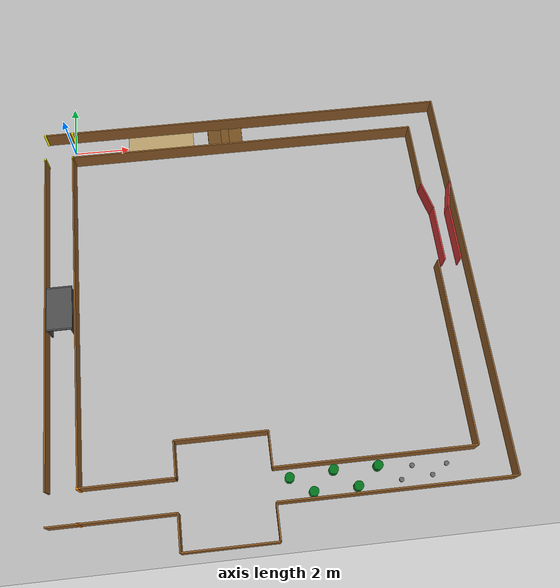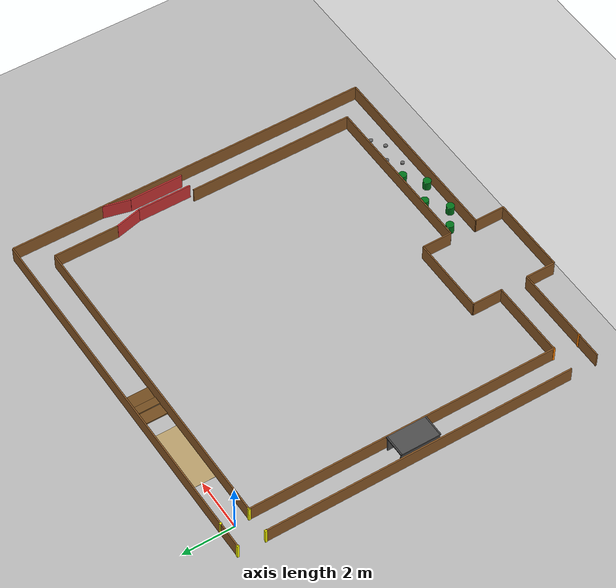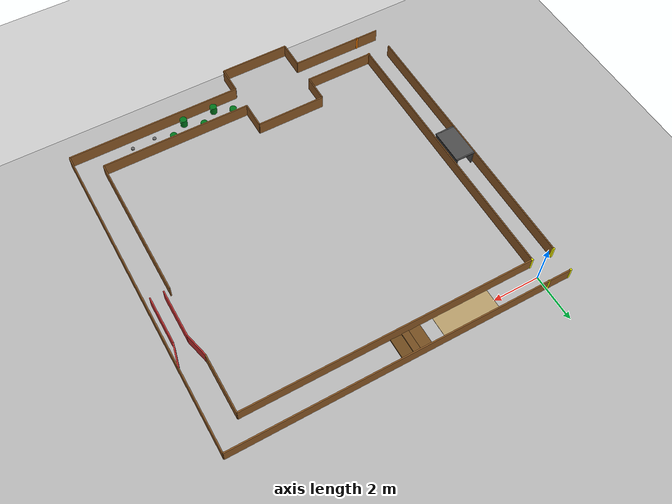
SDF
<?xml version="1.0" ?>
<sdf version='1.9'>
  <world name='competition_arena'>

    <physics name='1ms' type='ignored'>
      <max_step_size>0.001</max_step_size>
      <real_time_factor>1</real_time_factor>
      <real_time_update_rate>1000</real_time_update_rate>
    </physics>
    <gravity>0 0 -9.8</gravity>
    <magnetic_field>6e-06 2.3e-05 -4.2e-05</magnetic_field>
    <atmosphere type='adiabatic'/>

    <plugin name='gz::sim::systems::Physics'          filename='ignition-gazebo-physics-system'/>
    <plugin name='gz::sim::systems::UserCommands'     filename='ignition-gazebo-user-commands-system'/>
    <plugin name='gz::sim::systems::SceneBroadcaster' filename='ignition-gazebo-scene-broadcaster-system'/>
    <plugin name='gz::sim::systems::Contact'          filename='ignition-gazebo-contact-system'/>
    <plugin filename="ignition-gazebo-imu-system"     name="ignition::gazebo::systems::Imu"/>
    <plugin filename="gz-sim-sensors-system"          name="gz::sim::systems::Sensors">
      <render_engine>ogre2</render_engine>
    </plugin>

    <scene>
      <ambient>0.4 0.4 0.4 1</ambient>
      <background>0.7 0.7 0.7 1</background>
      <shadows>true</shadows>
    </scene>

    <light name='sun' type='directional'>
      <pose>0 0 10 0 0 0</pose>
      <cast_shadows>true</cast_shadows>
      <intensity>1</intensity>
      <direction>-0.5 0.1 -0.9</direction>
      <diffuse>0.8 0.8 0.8 1</diffuse>
      <specular>0.2 0.2 0.2 1</specular>
      <attenuation>
        <range>1000</range>
        <linear>0.01</linear>
        <constant>0.90000000000000002</constant>
        <quadratic>0.001</quadratic>
      </attenuation>
      <spot>
        <inner_angle>0</inner_angle>
        <outer_angle>0</outer_angle>
        <falloff>0</falloff>
      </spot>
    </light>

    <!-- Ground plane collision -->
    <model name='ground_plane'>
      <static>true</static>
      <link name='link'>
        <collision name='collision'>
          <geometry><plane><normal>0 0 1</normal><size>100 100</size></plane></geometry>
          <surface><friction><ode/></friction><bounce/><contact/></surface>
        </collision>
        <visual name='visual'>
          <geometry><plane><normal>0 0 1</normal><size>100 100</size></plane></geometry>
          <material>
            <ambient>0.8 0.8 0.8 1</ambient>
            <diffuse>0.8 0.8 0.8 1</diffuse>
            <specular>0.8 0.8 0.8 1</specular>
          </material>
        </visual>
        <pose>0 0 0 0 0 0</pose>
      </link>
    </model>

    <!-- Grass texture overlay -->
    <include>
      <name>ground_plane_image</name>
      <uri>model://grass_plane</uri>
    </include>

    <!-- Start line posts (yellow) -->
    <model name='start_post_n'>
      <static>true</static>
      <pose>0.0 0.525 0.3 0 0 0</pose>
      <link name='link'>
        <collision name='c'><geometry><box><size>0.08 0.08 0.6</size></box></geometry></collision>
        <visual name='v'><geometry><box><size>0.08 0.08 0.6</size></box></geometry>
          <material><ambient>1 1 0 1</ambient><diffuse>1 1 0 1</diffuse></material>
        </visual>
      </link>
    </model>
    <model name='start_post_s'>
      <static>true</static>
      <pose>0.0 -0.525 0.3 0 0 0</pose>
      <link name='link'>
        <collision name='c'><geometry><box><size>0.08 0.08 0.6</size></box></geometry></collision>
        <visual name='v'><geometry><box><size>0.08 0.08 0.6</size></box></geometry>
          <material><ambient>1 1 0 1</ambient><diffuse>1 1 0 1</diffuse></material>
        </visual>
      </link>
    </model>

    <!-- Leg 1 north wall  y=+0.525, x=0..13.525 (wraps outer Turn-1 corner) -->
    <model name='l1_n_wall'>
      <static>true</static>
      <pose>6.7625 0.525 0.3 0 0 0</pose>
      <link name='link'>
        <collision name='c'><geometry><box><size>13.525 0.05 0.6</size></box></geometry></collision>
        <visual name='v'><geometry><box><size>13.525 0.05 0.6</size></box></geometry>
          <material><ambient>0.55 0.35 0.15 1</ambient><diffuse>0.55 0.35 0.15 1</diffuse></material>
        </visual>
      </link>
    </model>

    <!-- Leg 1 south wall  y=-0.525, x=0..12.475 (stops at inner Turn-1 corner) -->
    <model name='l1_s_wall'>
      <static>true</static>
      <pose>6.2375 -0.525 0.3 0 0 0</pose>
      <link name='link'>
        <collision name='c'><geometry><box><size>12.475 0.05 0.6</size></box></geometry></collision>
        <visual name='v'><geometry><box><size>12.475 0.05 0.6</size></box></geometry>
          <material><ambient>0.55 0.35 0.15 1</ambient><diffuse>0.55 0.35 0.15 1</diffuse></material>
        </visual>
      </link>
    </model>

    <!-- Gravel section visual patch x=2..4.44 (4ft x 8ft = 1.22 x 2.44 m) -->
    <model name='gravel_patch'>
      <static>true</static>
      <pose>3.22 0 0.003 0 0 0</pose>
      <link name='link'>
        <visual name='v'><geometry><box><size>2.44 1.0 0.006</size></box></geometry>
          <material><ambient>0.72 0.62 0.42 1</ambient><diffuse>0.72 0.62 0.42 1</diffuse></material>
        </visual>
      </link>
    </model>

    <model name='ramp_up'>
      <static>true</static>
      <pose>5.244 0 0.0052 0 0.1222 0</pose>
      <link name='link'>
        <visual name='v'>
          <geometry><box><size>0.492 1.0 0.05</size></box></geometry>
          <material><ambient>0.45 0.30 0.12 1</ambient><diffuse>0.45 0.30 0.12 1</diffuse></material>
        </visual>
      </link>
    </model>
    <model name='ramp_flat'>
      <static>true</static>
      <pose>5.639 0 0.035 0 0 0</pose>
      <link name='link'>
        <visual name='v'>
          <geometry><box><size>0.3 1.0 0.05</size></box></geometry>
          <material><ambient>0.45 0.30 0.12 1</ambient><diffuse>0.45 0.30 0.12 1</diffuse></material>
        </visual>
      </link>
    </model>
    <model name='ramp_down'>
      <static>true</static>
      <pose>6.033 0 0.0052 0 -0.1222 0</pose>
      <link name='link'>
        <visual name='v'>
          <geometry><box><size>0.492 1.0 0.05</size></box></geometry>
          <material><ambient>0.45 0.30 0.12 1</ambient><diffuse>0.45 0.30 0.12 1</diffuse></material>
        </visual>
      </link>
    </model>

    <!-- Leg 2 east (outer) wall  x=13.525, y=+0.525..-13.525 -->
    <model name='l2_e_wall'>
      <static>true</static>
      <pose>13.525 -6.5 0.3 0 0 0</pose>
      <link name='link'>
        <collision name='c'><geometry><box><size>0.05 14.05 0.6</size></box></geometry></collision>
        <visual name='v'><geometry><box><size>0.05 14.05 0.6</size></box></geometry>
          <material><ambient>0.55 0.35 0.15 1</ambient><diffuse>0.55 0.35 0.15 1</diffuse></material>
        </visual>
      </link>
    </model>

    <!-- Leg 2 west (inner) wall before narrow  x=12.475, y=-0.525..-3.0 -->
    <model name='l2_w_wall_a'>
      <static>true</static>
      <pose>12.475 -1.7625 0.3 0 0 0</pose>
      <link name='link'>
        <collision name='c'><geometry><box><size>0.05 2.475 0.6</size></box></geometry></collision>
        <visual name='v'><geometry><box><size>0.05 2.475 0.6</size></box></geometry>
          <material><ambient>0.55 0.35 0.15 1</ambient><diffuse>0.55 0.35 0.15 1</diffuse></material>
        </visual>
      </link>
    </model>

    <model name='narrow_w_chamfer'>
      <static>true</static>
      <pose>12.598 -3.5 0.3 0 0 -1.330</pose>
      <link name='link'>
        <collision name='c'><geometry><box><size>1.030 0.05 0.6</size></box></geometry></collision>
        <visual name='v'><geometry><box><size>1.030 0.05 0.6</size></box></geometry>
          <material><ambient>0.80 0.20 0.20 1</ambient><diffuse>0.80 0.20 0.20 1</diffuse></material>
        </visual>
      </link>
    </model>
    <model name='narrow_e_chamfer'>
      <static>true</static>
      <pose>13.402 -3.5 0.3 0 0 1.330</pose>
      <link name='link'>
        <collision name='c'><geometry><box><size>1.030 0.05 0.6</size></box></geometry></collision>
        <visual name='v'><geometry><box><size>1.030 0.05 0.6</size></box></geometry>
          <material><ambient>0.80 0.20 0.20 1</ambient><diffuse>0.80 0.20 0.20 1</diffuse></material>
        </visual>
      </link>
    </model>

    <model name='narrow_w_wall'>
      <static>true</static>
      <pose>12.721 -5.031 0.3 0 0 0</pose>
      <link name='link'>
        <collision name='c'><geometry><box><size>0.05 2.062 0.6</size></box></geometry></collision>
        <visual name='v'><geometry><box><size>0.05 2.062 0.6</size></box></geometry>
          <material><ambient>0.80 0.20 0.20 1</ambient><diffuse>0.80 0.20 0.20 1</diffuse></material>
        </visual>
      </link>
    </model>
    <model name='narrow_e_wall'>
      <static>true</static>
      <pose>13.279 -5.031 0.3 0 0 0</pose>
      <link name='link'>
        <collision name='c'><geometry><box><size>0.05 2.062 0.6</size></box></geometry></collision>
        <visual name='v'><geometry><box><size>0.05 2.062 0.6</size></box></geometry>
          <material><ambient>0.80 0.20 0.20 1</ambient><diffuse>0.80 0.20 0.20 1</diffuse></material>
        </visual>
      </link>
    </model>

    <!-- Leg 2 west (inner) wall after narrow  x=12.475, y=-6.062..-12.475 -->
    <model name='l2_w_wall_b'>
      <static>true</static>
      <pose>12.475 -9.2685 0.3 0 0 0</pose>
      <link name='link'>
        <collision name='c'><geometry><box><size>0.05 6.413 0.6</size></box></geometry></collision>
        <visual name='v'><geometry><box><size>0.05 6.413 0.6</size></box></geometry>
          <material><ambient>0.55 0.35 0.15 1</ambient><diffuse>0.55 0.35 0.15 1</diffuse></material>
        </visual>
      </link>
    </model>

    <model name='l3_s_wall_a'>
      <static>true</static>
      <pose>9.7625 -13.525 0.3 0 0 0</pose>
      <link name='link'>
        <collision name='c'><geometry><box><size>7.525 0.05 0.6</size></box></geometry></collision>
        <visual name='v'><geometry><box><size>7.525 0.05 0.6</size></box></geometry>
          <material><ambient>0.55 0.35 0.15 1</ambient><diffuse>0.55 0.35 0.15 1</diffuse></material>
        </visual>
      </link>
    </model>
    <model name='l3_s_wall_b'>
      <static>true</static>
      <pose>1.5 -13.525 0.3 0 0 0</pose>
      <link name='link'>
        <collision name='c'><geometry><box><size>3.0 0.05 0.6</size></box></geometry></collision>
        <visual name='v'><geometry><box><size>3.0 0.05 0.6</size></box></geometry>
          <material><ambient>0.55 0.35 0.15 1</ambient><diffuse>0.55 0.35 0.15 1</diffuse></material>
        </visual>
      </link>
    </model>

    <!-- Leg 3 north wall obstacle+pothole zone  y=-12.475, x=6..12.475 -->
    <model name='l3_n_wall_a'>
      <static>true</static>
      <pose>9.2375 -12.475 0.3 0 0 0</pose>
      <link name='link'>
        <collision name='c'><geometry><box><size>6.475 0.05 0.6</size></box></geometry></collision>
        <visual name='v'><geometry><box><size>6.475 0.05 0.6</size></box></geometry>
          <material><ambient>0.55 0.35 0.15 1</ambient><diffuse>0.55 0.35 0.15 1</diffuse></material>
        </visual>
      </link>
    </model>

    <!-- Leg 3 north wall tunnel+finish zone  y=-12.475, x=0..3 (extended now tunnel moved to Leg 4) -->
    <model name='l3_n_wall_b'>
      <static>true</static>
      <pose>1.5 -12.475 0.3 0 0 0</pose>
      <link name='link'>
        <collision name='c'><geometry><box><size>3.0 0.05 0.6</size></box></geometry></collision>
        <visual name='v'><geometry><box><size>3.0 0.05 0.6</size></box></geometry>
          <material><ambient>0.55 0.35 0.15 1</ambient><diffuse>0.55 0.35 0.15 1</diffuse></material>
        </visual>
      </link>
    </model>

    <!-- Pothole bumps  (x=10..12, y_center=-13)
         0.75in tall modelled as 0.05 m cylinders for visibility;
         6in dia = 0.152 m, r=0.076 m -->
    <model name='bump_1'>
      <static>true</static>
      <pose>11.5 -12.85 0.025 0 0 0</pose>
      <link name='link'>
        <collision name='c'><geometry><cylinder><radius>0.076</radius><length>0.05</length></cylinder></geometry></collision>
        <visual name='v'><geometry><cylinder><radius>0.076</radius><length>0.05</length></cylinder></geometry>
          <material><ambient>0.4 0.4 0.4 1</ambient><diffuse>0.4 0.4 0.4 1</diffuse></material>
        </visual>
      </link>
    </model>
    <model name='bump_2'>
      <static>true</static>
      <pose>11.0 -13.15 0.025 0 0 0</pose>
      <link name='link'>
        <collision name='c'><geometry><cylinder><radius>0.076</radius><length>0.05</length></cylinder></geometry></collision>
        <visual name='v'><geometry><cylinder><radius>0.076</radius><length>0.05</length></cylinder></geometry>
          <material><ambient>0.4 0.4 0.4 1</ambient><diffuse>0.4 0.4 0.4 1</diffuse></material>
        </visual>
      </link>
    </model>
    <model name='bump_3'>
      <static>true</static>
      <pose>10.4 -12.80 0.025 0 0 0</pose>
      <link name='link'>
        <collision name='c'><geometry><cylinder><radius>0.076</radius><length>0.05</length></cylinder></geometry></collision>
        <visual name='v'><geometry><cylinder><radius>0.076</radius><length>0.05</length></cylinder></geometry>
          <material><ambient>0.4 0.4 0.4 1</ambient><diffuse>0.4 0.4 0.4 1</diffuse></material>
        </visual>
      </link>
    </model>
    <model name='bump_4'>
      <static>true</static>
      <pose>10.0 -13.20 0.025 0 0 0</pose>
      <link name='link'>
        <collision name='c'><geometry><cylinder><radius>0.076</radius><length>0.05</length></cylinder></geometry></collision>
        <visual name='v'><geometry><cylinder><radius>0.076</radius><length>0.05</length></cylinder></geometry>
          <material><ambient>0.4 0.4 0.4 1</ambient><diffuse>0.4 0.4 0.4 1</diffuse></material>
        </visual>
      </link>
    </model>

    <!-- Bucket obstacles  (5-gal bucket: r~=0.15 m, h=0.36 m)
         x=6..10, staggered so a clear path exists between them -->
    <model name='bucket_1'>
      <static>true</static>
      <pose>9.3 -12.72 0.18 0 0 0</pose>
      <link name='link'>
        <collision name='c'><geometry><cylinder><radius>0.15</radius><length>0.36</length></cylinder></geometry></collision>
        <visual name='v'><geometry><cylinder><radius>0.15</radius><length>0.36</length></cylinder></geometry>
          <material><ambient>0.00 0.45 0.10 1</ambient><diffuse>0.00 0.45 0.10 1</diffuse></material>
        </visual>
      </link>
    </model>
    <model name='bucket_2'>
      <static>true</static>
      <pose>8.6 -13.28 0.18 0 0 0</pose>
      <link name='link'>
        <collision name='c'><geometry><cylinder><radius>0.15</radius><length>0.36</length></cylinder></geometry></collision>
        <visual name='v'><geometry><cylinder><radius>0.15</radius><length>0.36</length></cylinder></geometry>
          <material><ambient>0.00 0.45 0.10 1</ambient><diffuse>0.00 0.45 0.10 1</diffuse></material>
        </visual>
      </link>
    </model>
    <model name='bucket_3'>
      <static>true</static>
      <pose>7.9 -12.70 0.18 0 0 0</pose>
      <link name='link'>
        <collision name='c'><geometry><cylinder><radius>0.15</radius><length>0.36</length></cylinder></geometry></collision>
        <visual name='v'><geometry><cylinder><radius>0.15</radius><length>0.36</length></cylinder></geometry>
          <material><ambient>0.00 0.45 0.10 1</ambient><diffuse>0.00 0.45 0.10 1</diffuse></material>
        </visual>
      </link>
    </model>
    <model name='bucket_4'>
      <static>true</static>
      <pose>7.2 -13.30 0.18 0 0 0</pose>
      <link name='link'>
        <collision name='c'><geometry><cylinder><radius>0.15</radius><length>0.36</length></cylinder></geometry></collision>
        <visual name='v'><geometry><cylinder><radius>0.15</radius><length>0.36</length></cylinder></geometry>
          <material><ambient>0.00 0.45 0.10 1</ambient><diffuse>0.00 0.45 0.10 1</diffuse></material>
        </visual>
      </link>
    </model>
    <model name='bucket_5'>
      <static>true</static>
      <pose>6.5 -12.80 0.18 0 0 0</pose>
      <link name='link'>
        <collision name='c'><geometry><cylinder><radius>0.15</radius><length>0.36</length></cylinder></geometry></collision>
        <visual name='v'><geometry><cylinder><radius>0.15</radius><length>0.36</length></cylinder></geometry>
          <material><ambient>0.00 0.45 0.10 1</ambient><diffuse>0.00 0.45 0.10 1</diffuse></material>
        </visual>
      </link>
    </model>

    <model name='wide_n_wall'>
      <static>true</static>
      <pose>4.5 -11.325 0.3 0 0 0</pose>
      <link name='link'>
        <collision name='c'><geometry><box><size>3.0 0.05 0.6</size></box></geometry></collision>
        <visual name='v'><geometry><box><size>3.0 0.05 0.6</size></box></geometry>
          <material><ambient>0.55 0.35 0.15 1</ambient><diffuse>0.55 0.35 0.15 1</diffuse></material>
        </visual>
      </link>
    </model>
    <model name='wide_s_wall'>
      <static>true</static>
      <pose>4.5 -14.675 0.3 0 0 0</pose>
      <link name='link'>
        <collision name='c'><geometry><box><size>3.0 0.05 0.6</size></box></geometry></collision>
        <visual name='v'><geometry><box><size>3.0 0.05 0.6</size></box></geometry>
          <material><ambient>0.55 0.35 0.15 1</ambient><diffuse>0.55 0.35 0.15 1</diffuse></material>
        </visual>
      </link>
    </model>
    <!-- East transition caps (x=6) -->
    <model name='wide_entry_n'>
      <static>true</static>
      <pose>6.0 -11.9 0.3 0 0 0</pose>
      <link name='link'>
        <collision name='c'><geometry><box><size>0.05 1.15 0.6</size></box></geometry></collision>
        <visual name='v'><geometry><box><size>0.05 1.15 0.6</size></box></geometry>
          <material><ambient>0.55 0.35 0.15 1</ambient><diffuse>0.55 0.35 0.15 1</diffuse></material>
        </visual>
      </link>
    </model>
    <model name='wide_entry_s'>
      <static>true</static>
      <pose>6.0 -14.1 0.3 0 0 0</pose>
      <link name='link'>
        <collision name='c'><geometry><box><size>0.05 1.15 0.6</size></box></geometry></collision>
        <visual name='v'><geometry><box><size>0.05 1.15 0.6</size></box></geometry>
          <material><ambient>0.55 0.35 0.15 1</ambient><diffuse>0.55 0.35 0.15 1</diffuse></material>
        </visual>
      </link>
    </model>
    <!-- West transition caps (x=3) -->
    <model name='wide_exit_n'>
      <static>true</static>
      <pose>3.0 -11.9 0.3 0 0 0</pose>
      <link name='link'>
        <collision name='c'><geometry><box><size>0.05 1.15 0.6</size></box></geometry></collision>
        <visual name='v'><geometry><box><size>0.05 1.15 0.6</size></box></geometry>
          <material><ambient>0.55 0.35 0.15 1</ambient><diffuse>0.55 0.35 0.15 1</diffuse></material>
        </visual>
      </link>
    </model>
    <model name='wide_exit_s'>
      <static>true</static>
      <pose>3.0 -14.1 0.3 0 0 0</pose>
      <link name='link'>
        <collision name='c'><geometry><box><size>0.05 1.15 0.6</size></box></geometry></collision>
        <visual name='v'><geometry><box><size>0.05 1.15 0.6</size></box></geometry>
          <material><ambient>0.55 0.35 0.15 1</ambient><diffuse>0.55 0.35 0.15 1</diffuse></material>
        </visual>
      </link>
    </model>

    <!-- (Tunnel moved to Leg 4 — see below) -->

    <!-- Leg 4 east wall  x=0, y=-0.525..-12.475 -->
    <model name='leg4_e_wall'>
      <static>true</static>
      <pose>0.0 -6.5 0.3 0 0 0</pose>
      <link name='link'>
        <collision name='c'><geometry><box><size>0.05 11.95 0.6</size></box></geometry></collision>
        <visual name='v'><geometry><box><size>0.05 11.95 0.6</size></box></geometry>
          <material><ambient>0.55 0.35 0.15 1</ambient><diffuse>0.55 0.35 0.15 1</diffuse></material>
        </visual>
      </link>
    </model>

    <!-- Leg 4 west (outer) wall  x=-1.0, y=-0.525..-12.475 -->
    <model name='leg4_w_wall'>
      <static>true</static>
      <pose>-1.0 -6.5 0.3 0 0 0</pose>
      <link name='link'>
        <collision name='c'><geometry><box><size>0.05 11.95 0.6</size></box></geometry></collision>
        <visual name='v'><geometry><box><size>0.05 11.95 0.6</size></box></geometry>
          <material><ambient>0.55 0.35 0.15 1</ambient><diffuse>0.55 0.35 0.15 1</diffuse></material>
        </visual>
      </link>
    </model>

    <model name='tunnel_e_wall'>
      <static>true</static>
      <pose>-0.12 -6.5 0.3175 0 0 0</pose>
      <link name='link'>
        <collision name='c'><geometry><box><size>0.05 1.52 0.635</size></box></geometry></collision>
        <visual name='v'><geometry><box><size>0.05 1.52 0.635</size></box></geometry>
          <material><ambient>0.30 0.30 0.30 1</ambient><diffuse>0.30 0.30 0.30 1</diffuse></material>
        </visual>
      </link>
    </model>
    <model name='tunnel_w_wall'>
      <static>true</static>
      <pose>-0.88 -6.5 0.3175 0 0 0</pose>
      <link name='link'>
        <collision name='c'><geometry><box><size>0.05 1.52 0.635</size></box></geometry></collision>
        <visual name='v'><geometry><box><size>0.05 1.52 0.635</size></box></geometry>
          <material><ambient>0.30 0.30 0.30 1</ambient><diffuse>0.30 0.30 0.30 1</diffuse></material>
        </visual>
      </link>
    </model>
    <model name='tunnel_roof'>
      <static>true</static>
      <pose>-0.5 -6.5 0.6575 0 0 0</pose>
      <link name='link'>
        <collision name='c'><geometry><box><size>0.86 1.52 0.05</size></box></geometry></collision>
        <visual name='v'><geometry><box><size>0.86 1.52 0.05</size></box></geometry>
          <material><ambient>0.30 0.30 0.30 1</ambient><diffuse>0.30 0.30 0.30 1</diffuse></material>
        </visual>
      </link>
    </model>
    <!-- Tunnel south lintel (entry from Leg3 end, y=-7.26) -->
    <model name='tunnel_lintel_s'>
      <static>true</static>
      <pose>-0.5 -7.26 0.66 0 0 0</pose>
      <link name='link'>
        <collision name='c'><geometry><box><size>0.86 0.05 0.05</size></box></geometry></collision>
        <visual name='v'><geometry><box><size>0.86 0.05 0.05</size></box></geometry>
          <material><ambient>0.30 0.30 0.30 1</ambient><diffuse>0.30 0.30 0.30 1</diffuse></material>
        </visual>
      </link>
    </model>
    <!-- Tunnel north lintel (exit toward start gate, y=-5.74) -->
    <model name='tunnel_lintel_n'>
      <static>true</static>
      <pose>-0.5 -5.74 0.66 0 0 0</pose>
      <link name='link'>
        <collision name='c'><geometry><box><size>0.86 0.05 0.05</size></box></geometry></collision>
        <visual name='v'><geometry><box><size>0.86 0.05 0.05</size></box></geometry>
          <material><ambient>0.30 0.30 0.30 1</ambient><diffuse>0.30 0.30 0.30 1</diffuse></material>
        </visual>
      </link>
    </model>

    <!-- SW corner south cap  y=-13.525, x=-1.0..0
         Extends Leg3 south wall across SW corner to meet Leg4 west wall -->
    <model name='turn3_sw_cap'>
      <static>true</static>
      <pose>-0.5 -13.525 0.3 0 0 0</pose>
      <link name='link'>
        <collision name='c'><geometry><box><size>1.0 0.05 0.6</size></box></geometry></collision>
        <visual name='v'><geometry><box><size>1.0 0.05 0.6</size></box></geometry>
          <material><ambient>0.55 0.35 0.15 1</ambient><diffuse>0.55 0.35 0.15 1</diffuse></material>
        </visual>
      </link>
    </model>

    <!-- NW corner north cap  y=+0.525, x=-1.0..0
         Extends Leg1 north wall across NW corner to meet Leg4 west wall -->
    <model name='turn4_nw_cap'>
      <static>true</static>
      <pose>-0.5 0.525 0.3 0 0 0</pose>
      <link name='link'>
        <collision name='c'><geometry><box><size>1.0 0.05 0.6</size></box></geometry></collision>
        <visual name='v'><geometry><box><size>1.0 0.05 0.6</size></box></geometry>
          <material><ambient>0.55 0.35 0.15 1</ambient><diffuse>0.55 0.35 0.15 1</diffuse></material>
        </visual>
      </link>
    </model>

    <!-- Finish posts (yellow) — west side of gate, x=-1.0 -->
    <model name='finish_post_n'>
      <static>true</static>
      <pose>-1.0 0.525 0.3 0 0 0</pose>
      <link name='link'>
        <collision name='c'><geometry><box><size>0.08 0.08 0.6</size></box></geometry></collision>
        <visual name='v'><geometry><box><size>0.08 0.08 0.6</size></box></geometry>
          <material><ambient>1 1 0 1</ambient><diffuse>1 1 0 1</diffuse></material>
        </visual>
      </link>
    </model>
    <model name='finish_post_s'>
      <static>true</static>
      <pose>-1.0 -0.525 0.3 0 0 0</pose>
      <link name='link'>
        <collision name='c'><geometry><box><size>0.08 0.08 0.6</size></box></geometry></collision>
        <visual name='v'><geometry><box><size>0.08 0.08 0.6</size></box></geometry>
          <material><ambient>1 1 0 1</ambient><diffuse>1 1 0 1</diffuse></material>
        </visual>
      </link>
    </model>

    <!-- SW turn entry posts (orange) — mark Leg3→Leg4 corner at x=0 -->
    <model name='sw_turn_post_n'>
      <static>true</static>
      <pose>0.0 -12.475 0.3 0 0 0</pose>
      <link name='link'>
        <collision name='c'><geometry><box><size>0.08 0.08 0.6</size></box></geometry></collision>
        <visual name='v'><geometry><box><size>0.08 0.08 0.6</size></box></geometry>
          <material><ambient>1 0.5 0 1</ambient><diffuse>1 0.5 0 1</diffuse></material>
        </visual>
      </link>
    </model>
    <model name='sw_turn_post_s'>
      <static>true</static>
      <pose>0.0 -13.525 0.3 0 0 0</pose>
      <link name='link'>
        <collision name='c'><geometry><box><size>0.08 0.08 0.6</size></box></geometry></collision>
        <visual name='v'><geometry><box><size>0.08 0.08 0.6</size></box></geometry>
          <material><ambient>1 0.5 0 1</ambient><diffuse>1 0.5 0 1</diffuse></material>
        </visual>
      </link>
    </model>

  </world>
</sdf>

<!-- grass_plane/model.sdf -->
<sdf version="1.6">
  <model name="grass_plane">
    <static>true</static>
    <link name="grass_plane_link">
      <visual name="body_visual">
      	<geometry>
          <mesh><uri>meshes/grass_plane.dae</uri></mesh>
        </geometry>
      </visual>
      <collision name="body_collision">
      	<geometry>
          <mesh><uri>meshes/grass_plane.dae</uri></mesh>
          <plane>
            <normal>0 0 1</normal>
            <size>100 100</size>
          </plane>
        </geometry>
        <surface>
          <friction>
            <ode>
              <mu>0.8</mu> <!-- Coulomb friction coefficient -->
              <mu2>0.8</mu2> <!-- Second friction direction -->
            </ode>
          </friction>
        </surface>
      </collision>
    </link>
  </model>
</sdf>
